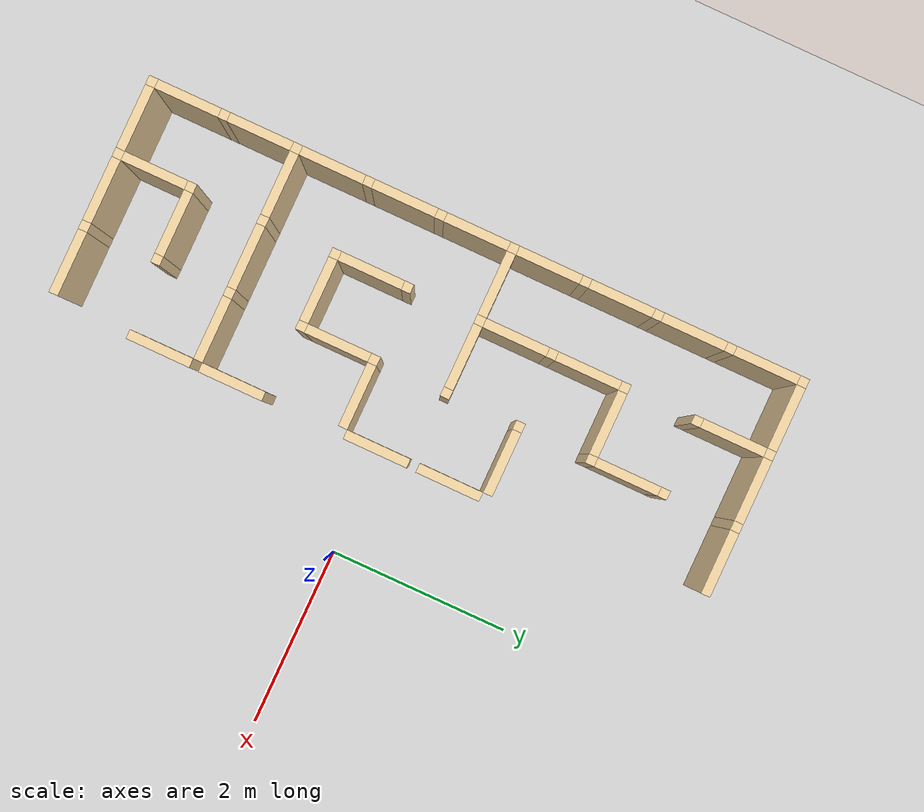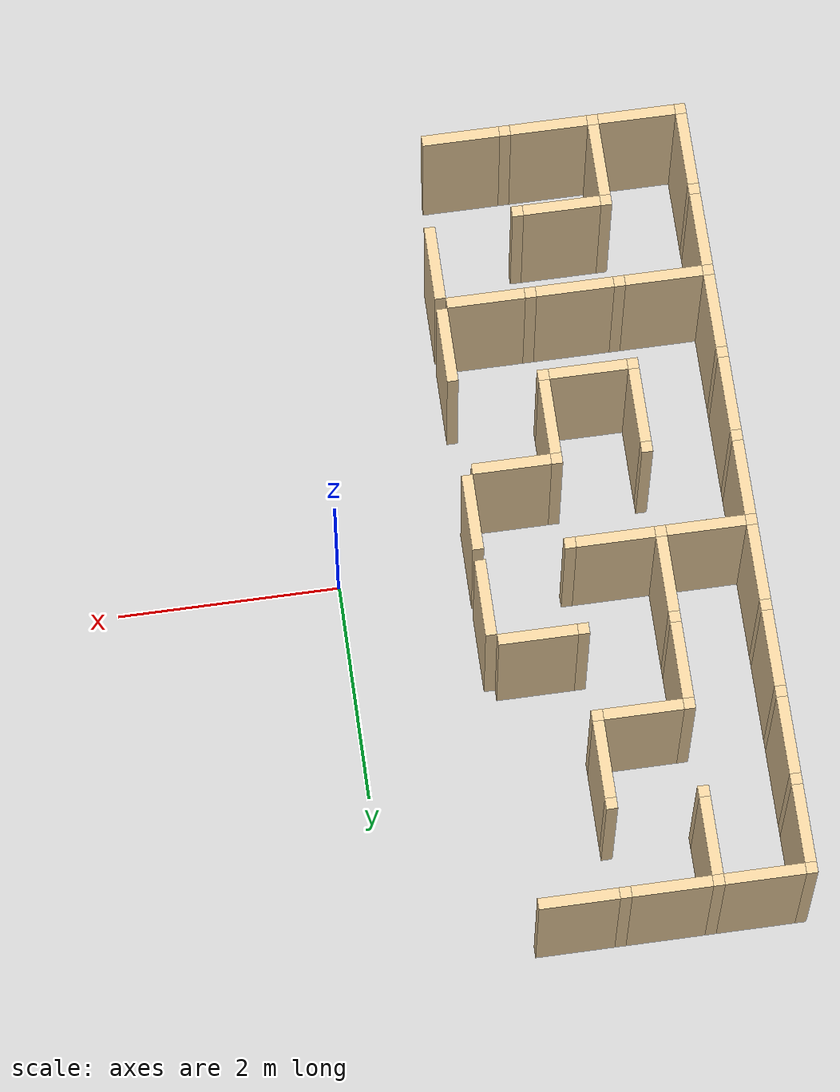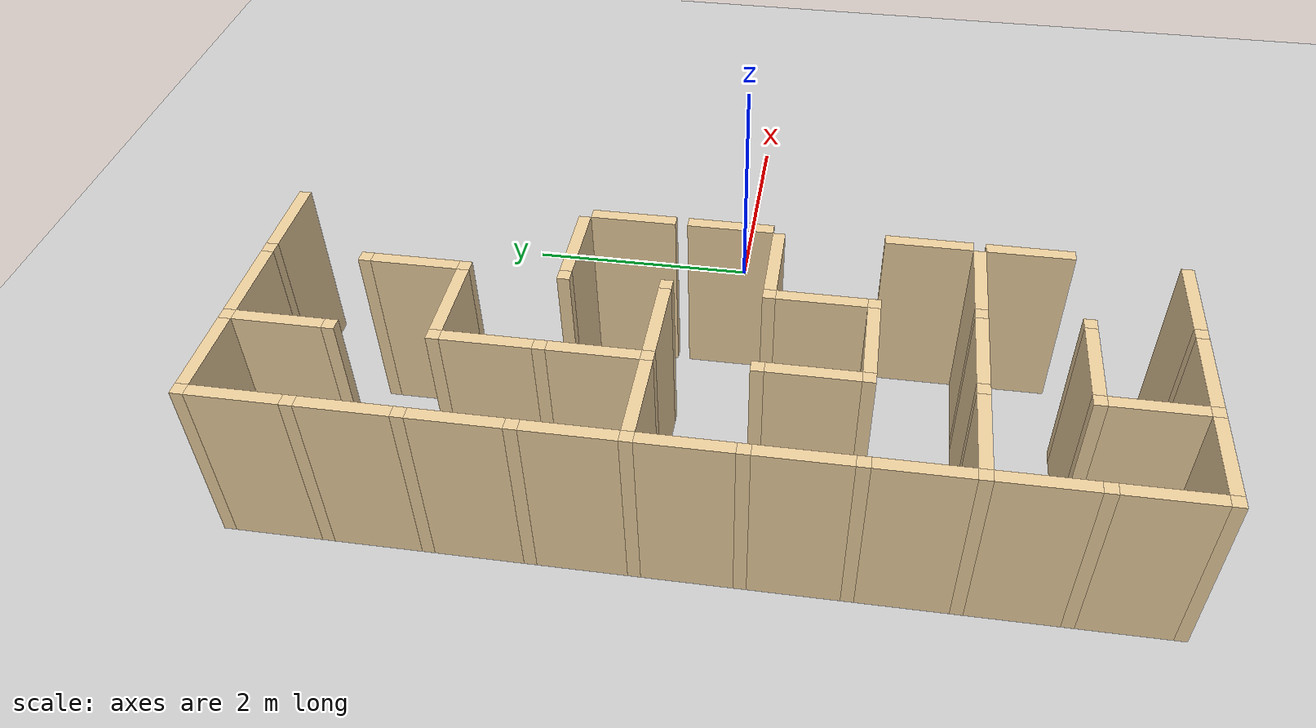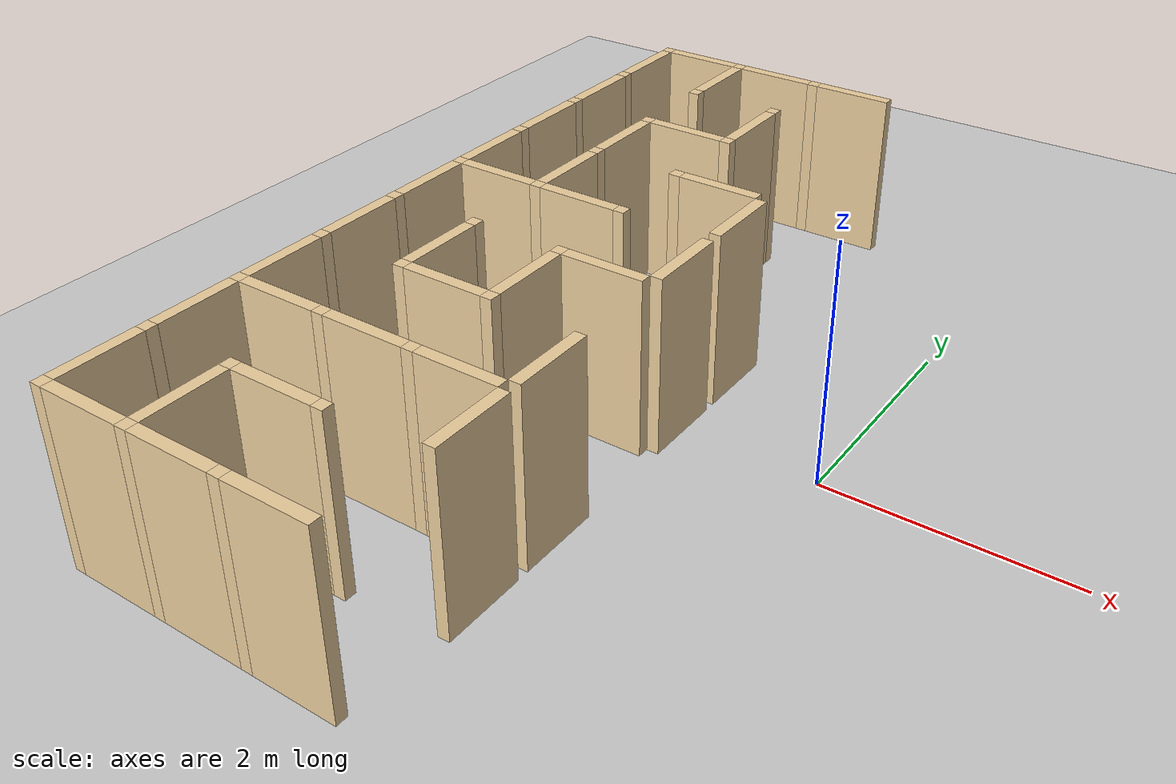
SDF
<sdf version="1.8">
 <world name="maze_world">
  <model name="ground_plane">
   <static>true</static>
   <link name="link">
    <collision name="collision">
     <geometry><plane><normal>0 0 1</normal><size>100 100</size></plane></geometry>
    </collision>
    <visual name="visual">
     <geometry><plane><normal>0 0 1</normal><size>100 100</size></plane></geometry>
     <material><ambient>0.8 0.8 0.8 1</ambient><diffuse>0.8 0.8 0.8 1</diffuse></material>
    </visual>
   </link>
  </model>
  <model name="maze">
   <link name="Wall_0_0_h">
    <collision name="Wall_0_0_h_c">
     <geometry><box><size>0.7 0.1 1.5</size></box></geometry>
     <pose>0 0 0.75 0 0 0</pose>
    </collision>
    <visual name="Wall_0_0_h_v">
     <pose>0 0 0.75 0 0 0</pose>
     <geometry><box><size>0.7 0.1 1.5</size></box></geometry>
     <material>
      <diffuse>0.921569 0.807843 0.615686 1</diffuse>
      <ambient>0.921569 0.807843 0.615686 1</ambient>
     </material>
    </visual>
    <pose>-3.2 -3.6 0 0 0 0</pose>
   </link>
   <link name="Wall_0_0_v">
    <collision name="Wall_0_0_v_c">
     <geometry><box><size>0.7 0.1 1.5</size></box></geometry>
     <pose>0 0 0.75 0 0 0</pose>
    </collision>
    <visual name="Wall_0_0_v_v">
     <pose>0 0 0.75 0 0 0</pose>
     <geometry><box><size>0.7 0.1 1.5</size></box></geometry>
     <material>
      <diffuse>0.921569 0.807843 0.615686 1</diffuse>
      <ambient>0.921569 0.807843 0.615686 1</ambient>
     </material>
    </visual>
    <pose>-3.6 -3.2 0 0 0 1.5708</pose>
   </link>
   <link name="Wall_0_1_h">
    <collision name="Wall_0_1_h_c">
     <geometry><box><size>0.7 0.1 1.5</size></box></geometry>
     <pose>0 0 0.75 0 0 0</pose>
    </collision>
    <visual name="Wall_0_1_h_v">
     <pose>0 0 0.75 0 0 0</pose>
     <geometry><box><size>0.7 0.1 1.5</size></box></geometry>
     <material>
      <diffuse>0.921569 0.807843 0.615686 1</diffuse>
      <ambient>0.921569 0.807843 0.615686 1</ambient>
     </material>
    </visual>
    <pose>-2.4 -3.6 0 0 0 0</pose>
   </link>
   <link name="Wall_0_1_v">
    <collision name="Wall_0_1_v_c">
     <geometry><box><size>0.7 0.1 1.5</size></box></geometry>
     <pose>0 0 0.75 0 0 0</pose>
    </collision>
    <visual name="Wall_0_1_v_v">
     <pose>0 0 0.75 0 0 0</pose>
     <geometry><box><size>0.7 0.1 1.5</size></box></geometry>
     <material>
      <diffuse>0.921569 0.807843 0.615686 1</diffuse>
      <ambient>0.921569 0.807843 0.615686 1</ambient>
     </material>
    </visual>
    <pose>-3.6 -2.4 0 0 0 1.5708</pose>
   </link>
   <link name="Wall_0_2_h">
    <collision name="Wall_0_2_h_c">
     <geometry><box><size>0.7 0.1 1.5</size></box></geometry>
     <pose>0 0 0.75 0 0 0</pose>
    </collision>
    <visual name="Wall_0_2_h_v">
     <pose>0 0 0.75 0 0 0</pose>
     <geometry><box><size>0.7 0.1 1.5</size></box></geometry>
     <material>
      <diffuse>0.921569 0.807843 0.615686 1</diffuse>
      <ambient>0.921569 0.807843 0.615686 1</ambient>
     </material>
    </visual>
    <pose>-1.6 -3.6 0 0 0 0</pose>
   </link>
   <link name="Wall_0_2_v">
    <collision name="Wall_0_2_v_c">
     <geometry><box><size>0.7 0.1 1.5</size></box></geometry>
     <pose>0 0 0.75 0 0 0</pose>
    </collision>
    <visual name="Wall_0_2_v_v">
     <pose>0 0 0.75 0 0 0</pose>
     <geometry><box><size>0.7 0.1 1.5</size></box></geometry>
     <material>
      <diffuse>0.921569 0.807843 0.615686 1</diffuse>
      <ambient>0.921569 0.807843 0.615686 1</ambient>
     </material>
    </visual>
    <pose>-3.6 -1.6 0 0 0 1.5708</pose>
   </link>
   <link name="Wall_0_3_v">
    <collision name="Wall_0_3_v_c">
     <geometry><box><size>0.7 0.1 1.5</size></box></geometry>
     <pose>0 0 0.75 0 0 0</pose>
    </collision>
    <visual name="Wall_0_3_v_v">
     <pose>0 0 0.75 0 0 0</pose>
     <geometry><box><size>0.7 0.1 1.5</size></box></geometry>
     <material>
      <diffuse>0.921569 0.807843 0.615686 1</diffuse>
      <ambient>0.921569 0.807843 0.615686 1</ambient>
     </material>
    </visual>
    <pose>-3.6 -0.8 0 0 0 1.5708</pose>
   </link>
   <link name="Wall_0_4_v">
    <collision name="Wall_0_4_v_c">
     <geometry><box><size>0.7 0.1 1.5</size></box></geometry>
     <pose>0 0 0.75 0 0 0</pose>
    </collision>
    <visual name="Wall_0_4_v_v">
     <pose>0 0 0.75 0 0 0</pose>
     <geometry><box><size>0.7 0.1 1.5</size></box></geometry>
     <material>
      <diffuse>0.921569 0.807843 0.615686 1</diffuse>
      <ambient>0.921569 0.807843 0.615686 1</ambient>
     </material>
    </visual>
    <pose>-3.6 0.0 0 0 0 1.5708</pose>
   </link>
   <link name="Wall_0_5_v">
    <collision name="Wall_0_5_v_c">
     <geometry><box><size>0.7 0.1 1.5</size></box></geometry>
     <pose>0 0 0.75 0 0 0</pose>
    </collision>
    <visual name="Wall_0_5_v_v">
     <pose>0 0 0.75 0 0 0</pose>
     <geometry><box><size>0.7 0.1 1.5</size></box></geometry>
     <material>
      <diffuse>0.921569 0.807843 0.615686 1</diffuse>
      <ambient>0.921569 0.807843 0.615686 1</ambient>
     </material>
    </visual>
    <pose>-3.6 0.8 0 0 0 1.5708</pose>
   </link>
   <link name="Wall_0_6_v">
    <collision name="Wall_0_6_v_c">
     <geometry><box><size>0.7 0.1 1.5</size></box></geometry>
     <pose>0 0 0.75 0 0 0</pose>
    </collision>
    <visual name="Wall_0_6_v_v">
     <pose>0 0 0.75 0 0 0</pose>
     <geometry><box><size>0.7 0.1 1.5</size></box></geometry>
     <material>
      <diffuse>0.921569 0.807843 0.615686 1</diffuse>
      <ambient>0.921569 0.807843 0.615686 1</ambient>
     </material>
    </visual>
    <pose>-3.6 1.6 0 0 0 1.5708</pose>
   </link>
   <link name="Wall_0_7_v">
    <collision name="Wall_0_7_v_c">
     <geometry><box><size>0.7 0.1 1.5</size></box></geometry>
     <pose>0 0 0.75 0 0 0</pose>
    </collision>
    <visual name="Wall_0_7_v_v">
     <pose>0 0 0.75 0 0 0</pose>
     <geometry><box><size>0.7 0.1 1.5</size></box></geometry>
     <material>
      <diffuse>0.921569 0.807843 0.615686 1</diffuse>
      <ambient>0.921569 0.807843 0.615686 1</ambient>
     </material>
    </visual>
    <pose>-3.6 2.4 0 0 0 1.5708</pose>
   </link>
   <link name="Wall_0_8_v">
    <collision name="Wall_0_8_v_c">
     <geometry><box><size>0.7 0.1 1.5</size></box></geometry>
     <pose>0 0 0.75 0 0 0</pose>
    </collision>
    <visual name="Wall_0_8_v_v">
     <pose>0 0 0.75 0 0 0</pose>
     <geometry><box><size>0.7 0.1 1.5</size></box></geometry>
     <material>
      <diffuse>0.921569 0.807843 0.615686 1</diffuse>
      <ambient>0.921569 0.807843 0.615686 1</ambient>
     </material>
    </visual>
    <pose>-3.6 3.2 0 0 0 1.5708</pose>
   </link>
   <link name="Wall_1_0_v">
    <collision name="Wall_1_0_v_c">
     <geometry><box><size>0.7 0.1 1.5</size></box></geometry>
     <pose>0 0 0.75 0 0 0</pose>
    </collision>
    <visual name="Wall_1_0_v_v">
     <pose>0 0 0.75 0 0 0</pose>
     <geometry><box><size>0.7 0.1 1.5</size></box></geometry>
     <material>
      <diffuse>0.921569 0.807843 0.615686 1</diffuse>
      <ambient>0.921569 0.807843 0.615686 1</ambient>
     </material>
    </visual>
    <pose>-2.8 -3.2 0 0 0 1.5708</pose>
   </link>
   <link name="Wall_1_1_h">
    <collision name="Wall_1_1_h_c">
     <geometry><box><size>0.7 0.1 1.5</size></box></geometry>
     <pose>0 0 0.75 0 0 0</pose>
    </collision>
    <visual name="Wall_1_1_h_v">
     <pose>0 0 0.75 0 0 0</pose>
     <geometry><box><size>0.7 0.1 1.5</size></box></geometry>
     <material>
      <diffuse>0.921569 0.807843 0.615686 1</diffuse>
      <ambient>0.921569 0.807843 0.615686 1</ambient>
     </material>
    </visual>
    <pose>-2.4 -2.8 0 0 0 0</pose>
   </link>
   <link name="Wall_1_3_v">
    <collision name="Wall_1_3_v_c">
     <geometry><box><size>0.7 0.1 1.5</size></box></geometry>
     <pose>0 0 0.75 0 0 0</pose>
    </collision>
    <visual name="Wall_1_3_v_v">
     <pose>0 0 0.75 0 0 0</pose>
     <geometry><box><size>0.7 0.1 1.5</size></box></geometry>
     <material>
      <diffuse>0.921569 0.807843 0.615686 1</diffuse>
      <ambient>0.921569 0.807843 0.615686 1</ambient>
     </material>
    </visual>
    <pose>-2.8 -0.8 0 0 0 1.5708</pose>
   </link>
   <link name="Wall_1_5_v">
    <collision name="Wall_1_5_v_c">
     <geometry><box><size>0.7 0.1 1.5</size></box></geometry>
     <pose>0 0 0.75 0 0 0</pose>
    </collision>
    <visual name="Wall_1_5_v_v">
     <pose>0 0 0.75 0 0 0</pose>
     <geometry><box><size>0.7 0.1 1.5</size></box></geometry>
     <material>
      <diffuse>0.921569 0.807843 0.615686 1</diffuse>
      <ambient>0.921569 0.807843 0.615686 1</ambient>
     </material>
    </visual>
    <pose>-2.8 0.8 0 0 0 1.5708</pose>
   </link>
   <link name="Wall_1_6_v">
    <collision name="Wall_1_6_v_c">
     <geometry><box><size>0.7 0.1 1.5</size></box></geometry>
     <pose>0 0 0.75 0 0 0</pose>
    </collision>
    <visual name="Wall_1_6_v_v">
     <pose>0 0 0.75 0 0 0</pose>
     <geometry><box><size>0.7 0.1 1.5</size></box></geometry>
     <material>
      <diffuse>0.921569 0.807843 0.615686 1</diffuse>
      <ambient>0.921569 0.807843 0.615686 1</ambient>
     </material>
    </visual>
    <pose>-2.8 1.6 0 0 0 1.5708</pose>
   </link>
   <link name="Wall_1_8_v">
    <collision name="Wall_1_8_v_c">
     <geometry><box><size>0.7 0.1 1.5</size></box></geometry>
     <pose>0 0 0.75 0 0 0</pose>
    </collision>
    <visual name="Wall_1_8_v_v">
     <pose>0 0 0.75 0 0 0</pose>
     <geometry><box><size>0.7 0.1 1.5</size></box></geometry>
     <material>
      <diffuse>0.921569 0.807843 0.615686 1</diffuse>
      <ambient>0.921569 0.807843 0.615686 1</ambient>
     </material>
    </visual>
    <pose>-2.8 3.2 0 0 0 1.5708</pose>
   </link>
   <link name="Wall_2_0_h">
    <collision name="Wall_2_0_h_c">
     <geometry><box><size>0.7 0.1 1.5</size></box></geometry>
     <pose>0 0 0.75 0 0 0</pose>
    </collision>
    <visual name="Wall_2_0_h_v">
     <pose>0 0 0.75 0 0 0</pose>
     <geometry><box><size>0.7 0.1 1.5</size></box></geometry>
     <material>
      <diffuse>0.921569 0.807843 0.615686 1</diffuse>
      <ambient>0.921569 0.807843 0.615686 1</ambient>
     </material>
    </visual>
    <pose>-3.2 -2.0 0 0 0 0</pose>
   </link>
   <link name="Wall_2_1_h">
    <collision name="Wall_2_1_h_c">
     <geometry><box><size>0.7 0.1 1.5</size></box></geometry>
     <pose>0 0 0.75 0 0 0</pose>
    </collision>
    <visual name="Wall_2_1_h_v">
     <pose>0 0 0.75 0 0 0</pose>
     <geometry><box><size>0.7 0.1 1.5</size></box></geometry>
     <material>
      <diffuse>0.921569 0.807843 0.615686 1</diffuse>
      <ambient>0.921569 0.807843 0.615686 1</ambient>
     </material>
    </visual>
    <pose>-2.4 -2.0 0 0 0 0</pose>
   </link>
   <link name="Wall_2_2_h">
    <collision name="Wall_2_2_h_c">
     <geometry><box><size>0.7 0.1 1.5</size></box></geometry>
     <pose>0 0 0.75 0 0 0</pose>
    </collision>
    <visual name="Wall_2_2_h_v">
     <pose>0 0 0.75 0 0 0</pose>
     <geometry><box><size>0.7 0.1 1.5</size></box></geometry>
     <material>
      <diffuse>0.921569 0.807843 0.615686 1</diffuse>
      <ambient>0.921569 0.807843 0.615686 1</ambient>
     </material>
    </visual>
    <pose>-1.6 -2.0 0 0 0 0</pose>
   </link>
   <link name="Wall_2_3_v">
    <collision name="Wall_2_3_v_c">
     <geometry><box><size>0.7 0.1 1.5</size></box></geometry>
     <pose>0 0 0.75 0 0 0</pose>
    </collision>
    <visual name="Wall_2_3_v_v">
     <pose>0 0 0.75 0 0 0</pose>
     <geometry><box><size>0.7 0.1 1.5</size></box></geometry>
     <material>
      <diffuse>0.921569 0.807843 0.615686 1</diffuse>
      <ambient>0.921569 0.807843 0.615686 1</ambient>
     </material>
    </visual>
    <pose>-2.0 -0.8 0 0 0 1.5708</pose>
   </link>
   <link name="Wall_2_7_v">
    <collision name="Wall_2_7_v_c">
     <geometry><box><size>0.7 0.1 1.5</size></box></geometry>
     <pose>0 0 0.75 0 0 0</pose>
    </collision>
    <visual name="Wall_2_7_v_v">
     <pose>0 0 0.75 0 0 0</pose>
     <geometry><box><size>0.7 0.1 1.5</size></box></geometry>
     <material>
      <diffuse>0.921569 0.807843 0.615686 1</diffuse>
      <ambient>0.921569 0.807843 0.615686 1</ambient>
     </material>
    </visual>
    <pose>-2.0 2.4 0 0 0 1.5708</pose>
   </link>
   <link name="Wall_3_1_h">
    <collision name="Wall_3_1_h_c">
     <geometry><box><size>0.7 0.1 1.5</size></box></geometry>
     <pose>0 0 0.75 0 0 0</pose>
    </collision>
    <visual name="Wall_3_1_h_v">
     <pose>0 0 0.75 0 0 0</pose>
     <geometry><box><size>0.7 0.1 1.5</size></box></geometry>
     <material>
      <diffuse>0.921569 0.807843 0.615686 1</diffuse>
      <ambient>0.921569 0.807843 0.615686 1</ambient>
     </material>
    </visual>
    <pose>-2.4 -1.2 0 0 0 0</pose>
   </link>
   <link name="Wall_3_1_v">
    <collision name="Wall_3_1_v_c">
     <geometry><box><size>0.7 0.1 1.5</size></box></geometry>
     <pose>0 0 0.75 0 0 0</pose>
    </collision>
    <visual name="Wall_3_1_v_v">
     <pose>0 0 0.75 0 0 0</pose>
     <geometry><box><size>0.7 0.1 1.5</size></box></geometry>
     <material>
      <diffuse>0.921569 0.807843 0.615686 1</diffuse>
      <ambient>0.921569 0.807843 0.615686 1</ambient>
     </material>
    </visual>
    <pose>-1.2 -2.4 0 0 0 1.5708</pose>
   </link>
   <link name="Wall_3_2_v">
    <collision name="Wall_3_2_v_c">
     <geometry><box><size>0.7 0.1 1.5</size></box></geometry>
     <pose>0 0 0.75 0 0 0</pose>
    </collision>
    <visual name="Wall_3_2_v_v">
     <pose>0 0 0.75 0 0 0</pose>
     <geometry><box><size>0.7 0.1 1.5</size></box></geometry>
     <material>
      <diffuse>0.921569 0.807843 0.615686 1</diffuse>
      <ambient>0.921569 0.807843 0.615686 1</ambient>
     </material>
    </visual>
    <pose>-1.2 -1.6 0 0 0 1.5708</pose>
   </link>
   <link name="Wall_3_4_v">
    <collision name="Wall_3_4_v_c">
     <geometry><box><size>0.7 0.1 1.5</size></box></geometry>
     <pose>0 0 0.75 0 0 0</pose>
    </collision>
    <visual name="Wall_3_4_v_v">
     <pose>0 0 0.75 0 0 0</pose>
     <geometry><box><size>0.7 0.1 1.5</size></box></geometry>
     <material>
      <diffuse>0.921569 0.807843 0.615686 1</diffuse>
      <ambient>0.921569 0.807843 0.615686 1</ambient>
     </material>
    </visual>
    <pose>-1.2 0.0 0 0 0 1.5708</pose>
   </link>
   <link name="Wall_3_5_v">
    <collision name="Wall_3_5_v_c">
     <geometry><box><size>0.7 0.1 1.5</size></box></geometry>
     <pose>0 0 0.75 0 0 0</pose>
    </collision>
    <visual name="Wall_3_5_v_v">
     <pose>0 0 0.75 0 0 0</pose>
     <geometry><box><size>0.7 0.1 1.5</size></box></geometry>
     <material>
      <diffuse>0.921569 0.807843 0.615686 1</diffuse>
      <ambient>0.921569 0.807843 0.615686 1</ambient>
     </material>
    </visual>
    <pose>-1.2 0.8 0 0 0 1.5708</pose>
   </link>
   <link name="Wall_4_2_h">
    <collision name="Wall_4_2_h_c">
     <geometry><box><size>0.7 0.1 1.5</size></box></geometry>
     <pose>0 0 0.75 0 0 0</pose>
    </collision>
    <visual name="Wall_4_2_h_v">
     <pose>0 0 0.75 0 0 0</pose>
     <geometry><box><size>0.7 0.1 1.5</size></box></geometry>
     <material>
      <diffuse>0.921569 0.807843 0.615686 1</diffuse>
      <ambient>0.921569 0.807843 0.615686 1</ambient>
     </material>
    </visual>
    <pose>-1.6 -0.4 0 0 0 0</pose>
   </link>
   <link name="Wall_5_0_h">
    <collision name="Wall_5_0_h_c">
     <geometry><box><size>0.7 0.1 1.5</size></box></geometry>
     <pose>0 0 0.75 0 0 0</pose>
    </collision>
    <visual name="Wall_5_0_h_v">
     <pose>0 0 0.75 0 0 0</pose>
     <geometry><box><size>0.7 0.1 1.5</size></box></geometry>
     <material>
      <diffuse>0.921569 0.807843 0.615686 1</diffuse>
      <ambient>0.921569 0.807843 0.615686 1</ambient>
     </material>
    </visual>
    <pose>-3.2 0.4 0 0 0 0</pose>
   </link>
   <link name="Wall_5_1_h">
    <collision name="Wall_5_1_h_c">
     <geometry><box><size>0.7 0.1 1.5</size></box></geometry>
     <pose>0 0 0.75 0 0 0</pose>
    </collision>
    <visual name="Wall_5_1_h_v">
     <pose>0 0 0.75 0 0 0</pose>
     <geometry><box><size>0.7 0.1 1.5</size></box></geometry>
     <material>
      <diffuse>0.921569 0.807843 0.615686 1</diffuse>
      <ambient>0.921569 0.807843 0.615686 1</ambient>
     </material>
    </visual>
    <pose>-2.4 0.4 0 0 0 0</pose>
   </link>
   <link name="Wall_6_2_h">
    <collision name="Wall_6_2_h_c">
     <geometry><box><size>0.7 0.1 1.5</size></box></geometry>
     <pose>0 0 0.75 0 0 0</pose>
    </collision>
    <visual name="Wall_6_2_h_v">
     <pose>0 0 0.75 0 0 0</pose>
     <geometry><box><size>0.7 0.1 1.5</size></box></geometry>
     <material>
      <diffuse>0.921569 0.807843 0.615686 1</diffuse>
      <ambient>0.921569 0.807843 0.615686 1</ambient>
     </material>
    </visual>
    <pose>-1.6 1.2 0 0 0 0</pose>
   </link>
   <link name="Wall_7_1_h">
    <collision name="Wall_7_1_h_c">
     <geometry><box><size>0.7 0.1 1.5</size></box></geometry>
     <pose>0 0 0.75 0 0 0</pose>
    </collision>
    <visual name="Wall_7_1_h_v">
     <pose>0 0 0.75 0 0 0</pose>
     <geometry><box><size>0.7 0.1 1.5</size></box></geometry>
     <material>
      <diffuse>0.921569 0.807843 0.615686 1</diffuse>
      <ambient>0.921569 0.807843 0.615686 1</ambient>
     </material>
    </visual>
    <pose>-2.4 2.0 0 0 0 0</pose>
   </link>
   <link name="Wall_9_0_h">
    <collision name="Wall_9_0_h_c">
     <geometry><box><size>0.7 0.1 1.5</size></box></geometry>
     <pose>0 0 0.75 0 0 0</pose>
    </collision>
    <visual name="Wall_9_0_h_v">
     <pose>0 0 0.75 0 0 0</pose>
     <geometry><box><size>0.7 0.1 1.5</size></box></geometry>
     <material>
      <diffuse>0.921569 0.807843 0.615686 1</diffuse>
      <ambient>0.921569 0.807843 0.615686 1</ambient>
     </material>
    </visual>
    <pose>-3.2 3.6 0 0 0 0</pose>
   </link>
   <link name="Wall_9_1_h">
    <collision name="Wall_9_1_h_c">
     <geometry><box><size>0.7 0.1 1.5</size></box></geometry>
     <pose>0 0 0.75 0 0 0</pose>
    </collision>
    <visual name="Wall_9_1_h_v">
     <pose>0 0 0.75 0 0 0</pose>
     <geometry><box><size>0.7 0.1 1.5</size></box></geometry>
     <material>
      <diffuse>0.921569 0.807843 0.615686 1</diffuse>
      <ambient>0.921569 0.807843 0.615686 1</ambient>
     </material>
    </visual>
    <pose>-2.4 3.6 0 0 0 0</pose>
   </link>
   <link name="Wall_9_2_h">
    <collision name="Wall_9_2_h_c">
     <geometry><box><size>0.7 0.1 1.5</size></box></geometry>
     <pose>0 0 0.75 0 0 0</pose>
    </collision>
    <visual name="Wall_9_2_h_v">
     <pose>0 0 0.75 0 0 0</pose>
     <geometry><box><size>0.7 0.1 1.5</size></box></geometry>
     <material>
      <diffuse>0.921569 0.807843 0.615686 1</diffuse>
      <ambient>0.921569 0.807843 0.615686 1</ambient>
     </material>
    </visual>
    <pose>-1.6 3.6 0 0 0 0</pose>
   </link>
   <link name="Joint_0_0">
    <collision name="Joint_0_0_c">
     <geometry><box><size>0.1 0.1 1.5</size></box></geometry>
     <pose>0 0 0.75 0 0 0</pose>
    </collision>
    <visual name="Joint_0_0_v">
     <pose>0 0 0.75 0 0 0</pose>
     <geometry><box><size>0.1 0.1 1.5</size></box></geometry>
     <material>
      <diffuse>0.921569 0.807843 0.615686 1</diffuse>
      <ambient>0.921569 0.807843 0.615686 1</ambient>
     </material>
    </visual>
    <pose>-3.6 -3.6 0 0 0 0</pose>
   </link>
   <link name="Joint_0_1">
    <collision name="Joint_0_1_c">
     <geometry><box><size>0.1 0.1 1.5</size></box></geometry>
     <pose>0 0 0.75 0 0 0</pose>
    </collision>
    <visual name="Joint_0_1_v">
     <pose>0 0 0.75 0 0 0</pose>
     <geometry><box><size>0.1 0.1 1.5</size></box></geometry>
     <material>
      <diffuse>0.921569 0.807843 0.615686 1</diffuse>
      <ambient>0.921569 0.807843 0.615686 1</ambient>
     </material>
    </visual>
    <pose>-3.6 -2.8 0 0 0 0</pose>
   </link>
   <link name="Joint_0_2">
    <collision name="Joint_0_2_c">
     <geometry><box><size>0.1 0.1 1.5</size></box></geometry>
     <pose>0 0 0.75 0 0 0</pose>
    </collision>
    <visual name="Joint_0_2_v">
     <pose>0 0 0.75 0 0 0</pose>
     <geometry><box><size>0.1 0.1 1.5</size></box></geometry>
     <material>
      <diffuse>0.921569 0.807843 0.615686 1</diffuse>
      <ambient>0.921569 0.807843 0.615686 1</ambient>
     </material>
    </visual>
    <pose>-3.6 -2.0 0 0 0 0</pose>
   </link>
   <link name="Joint_0_3">
    <collision name="Joint_0_3_c">
     <geometry><box><size>0.1 0.1 1.5</size></box></geometry>
     <pose>0 0 0.75 0 0 0</pose>
    </collision>
    <visual name="Joint_0_3_v">
     <pose>0 0 0.75 0 0 0</pose>
     <geometry><box><size>0.1 0.1 1.5</size></box></geometry>
     <material>
      <diffuse>0.921569 0.807843 0.615686 1</diffuse>
      <ambient>0.921569 0.807843 0.615686 1</ambient>
     </material>
    </visual>
    <pose>-3.6 -1.2 0 0 0 0</pose>
   </link>
   <link name="Joint_0_4">
    <collision name="Joint_0_4_c">
     <geometry><box><size>0.1 0.1 1.5</size></box></geometry>
     <pose>0 0 0.75 0 0 0</pose>
    </collision>
    <visual name="Joint_0_4_v">
     <pose>0 0 0.75 0 0 0</pose>
     <geometry><box><size>0.1 0.1 1.5</size></box></geometry>
     <material>
      <diffuse>0.921569 0.807843 0.615686 1</diffuse>
      <ambient>0.921569 0.807843 0.615686 1</ambient>
     </material>
    </visual>
    <pose>-3.6 -0.4 0 0 0 0</pose>
   </link>
   <link name="Joint_0_5">
    <collision name="Joint_0_5_c">
     <geometry><box><size>0.1 0.1 1.5</size></box></geometry>
     <pose>0 0 0.75 0 0 0</pose>
    </collision>
    <visual name="Joint_0_5_v">
     <pose>0 0 0.75 0 0 0</pose>
     <geometry><box><size>0.1 0.1 1.5</size></box></geometry>
     <material>
      <diffuse>0.921569 0.807843 0.615686 1</diffuse>
      <ambient>0.921569 0.807843 0.615686 1</ambient>
     </material>
    </visual>
    <pose>-3.6 0.4 0 0 0 0</pose>
   </link>
   <link name="Joint_0_6">
    <collision name="Joint_0_6_c">
     <geometry><box><size>0.1 0.1 1.5</size></box></geometry>
     <pose>0 0 0.75 0 0 0</pose>
    </collision>
    <visual name="Joint_0_6_v">
     <pose>0 0 0.75 0 0 0</pose>
     <geometry><box><size>0.1 0.1 1.5</size></box></geometry>
     <material>
      <diffuse>0.921569 0.807843 0.615686 1</diffuse>
      <ambient>0.921569 0.807843 0.615686 1</ambient>
     </material>
    </visual>
    <pose>-3.6 1.2 0 0 0 0</pose>
   </link>
   <link name="Joint_0_7">
    <collision name="Joint_0_7_c">
     <geometry><box><size>0.1 0.1 1.5</size></box></geometry>
     <pose>0 0 0.75 0 0 0</pose>
    </collision>
    <visual name="Joint_0_7_v">
     <pose>0 0 0.75 0 0 0</pose>
     <geometry><box><size>0.1 0.1 1.5</size></box></geometry>
     <material>
      <diffuse>0.921569 0.807843 0.615686 1</diffuse>
      <ambient>0.921569 0.807843 0.615686 1</ambient>
     </material>
    </visual>
    <pose>-3.6 2.0 0 0 0 0</pose>
   </link>
   <link name="Joint_0_8">
    <collision name="Joint_0_8_c">
     <geometry><box><size>0.1 0.1 1.5</size></box></geometry>
     <pose>0 0 0.75 0 0 0</pose>
    </collision>
    <visual name="Joint_0_8_v">
     <pose>0 0 0.75 0 0 0</pose>
     <geometry><box><size>0.1 0.1 1.5</size></box></geometry>
     <material>
      <diffuse>0.921569 0.807843 0.615686 1</diffuse>
      <ambient>0.921569 0.807843 0.615686 1</ambient>
     </material>
    </visual>
    <pose>-3.6 2.8 0 0 0 0</pose>
   </link>
   <link name="Joint_0_9">
    <collision name="Joint_0_9_c">
     <geometry><box><size>0.1 0.1 1.5</size></box></geometry>
     <pose>0 0 0.75 0 0 0</pose>
    </collision>
    <visual name="Joint_0_9_v">
     <pose>0 0 0.75 0 0 0</pose>
     <geometry><box><size>0.1 0.1 1.5</size></box></geometry>
     <material>
      <diffuse>0.921569 0.807843 0.615686 1</diffuse>
      <ambient>0.921569 0.807843 0.615686 1</ambient>
     </material>
    </visual>
    <pose>-3.6 3.6 0 0 0 0</pose>
   </link>
   <link name="Joint_1_0">
    <collision name="Joint_1_0_c">
     <geometry><box><size>0.1 0.1 1.5</size></box></geometry>
     <pose>0 0 0.75 0 0 0</pose>
    </collision>
    <visual name="Joint_1_0_v">
     <pose>0 0 0.75 0 0 0</pose>
     <geometry><box><size>0.1 0.1 1.5</size></box></geometry>
     <material>
      <diffuse>0.921569 0.807843 0.615686 1</diffuse>
      <ambient>0.921569 0.807843 0.615686 1</ambient>
     </material>
    </visual>
    <pose>-2.8 -3.6 0 0 0 0</pose>
   </link>
   <link name="Joint_1_1">
    <collision name="Joint_1_1_c">
     <geometry><box><size>0.1 0.1 1.5</size></box></geometry>
     <pose>0 0 0.75 0 0 0</pose>
    </collision>
    <visual name="Joint_1_1_v">
     <pose>0 0 0.75 0 0 0</pose>
     <geometry><box><size>0.1 0.1 1.5</size></box></geometry>
     <material>
      <diffuse>0.921569 0.807843 0.615686 1</diffuse>
      <ambient>0.921569 0.807843 0.615686 1</ambient>
     </material>
    </visual>
    <pose>-2.8 -2.8 0 0 0 0</pose>
   </link>
   <link name="Joint_1_2">
    <collision name="Joint_1_2_c">
     <geometry><box><size>0.1 0.1 1.5</size></box></geometry>
     <pose>0 0 0.75 0 0 0</pose>
    </collision>
    <visual name="Joint_1_2_v">
     <pose>0 0 0.75 0 0 0</pose>
     <geometry><box><size>0.1 0.1 1.5</size></box></geometry>
     <material>
      <diffuse>0.921569 0.807843 0.615686 1</diffuse>
      <ambient>0.921569 0.807843 0.615686 1</ambient>
     </material>
    </visual>
    <pose>-2.8 -2.0 0 0 0 0</pose>
   </link>
   <link name="Joint_1_3">
    <collision name="Joint_1_3_c">
     <geometry><box><size>0.1 0.1 1.5</size></box></geometry>
     <pose>0 0 0.75 0 0 0</pose>
    </collision>
    <visual name="Joint_1_3_v">
     <pose>0 0 0.75 0 0 0</pose>
     <geometry><box><size>0.1 0.1 1.5</size></box></geometry>
     <material>
      <diffuse>0.921569 0.807843 0.615686 1</diffuse>
      <ambient>0.921569 0.807843 0.615686 1</ambient>
     </material>
    </visual>
    <pose>-2.8 -1.2 0 0 0 0</pose>
   </link>
   <link name="Joint_1_4">
    <collision name="Joint_1_4_c">
     <geometry><box><size>0.1 0.1 1.5</size></box></geometry>
     <pose>0 0 0.75 0 0 0</pose>
    </collision>
    <visual name="Joint_1_4_v">
     <pose>0 0 0.75 0 0 0</pose>
     <geometry><box><size>0.1 0.1 1.5</size></box></geometry>
     <material>
      <diffuse>0.921569 0.807843 0.615686 1</diffuse>
      <ambient>0.921569 0.807843 0.615686 1</ambient>
     </material>
    </visual>
    <pose>-2.8 -0.4 0 0 0 0</pose>
   </link>
   <link name="Joint_1_5">
    <collision name="Joint_1_5_c">
     <geometry><box><size>0.1 0.1 1.5</size></box></geometry>
     <pose>0 0 0.75 0 0 0</pose>
    </collision>
    <visual name="Joint_1_5_v">
     <pose>0 0 0.75 0 0 0</pose>
     <geometry><box><size>0.1 0.1 1.5</size></box></geometry>
     <material>
      <diffuse>0.921569 0.807843 0.615686 1</diffuse>
      <ambient>0.921569 0.807843 0.615686 1</ambient>
     </material>
    </visual>
    <pose>-2.8 0.4 0 0 0 0</pose>
   </link>
   <link name="Joint_1_6">
    <collision name="Joint_1_6_c">
     <geometry><box><size>0.1 0.1 1.5</size></box></geometry>
     <pose>0 0 0.75 0 0 0</pose>
    </collision>
    <visual name="Joint_1_6_v">
     <pose>0 0 0.75 0 0 0</pose>
     <geometry><box><size>0.1 0.1 1.5</size></box></geometry>
     <material>
      <diffuse>0.921569 0.807843 0.615686 1</diffuse>
      <ambient>0.921569 0.807843 0.615686 1</ambient>
     </material>
    </visual>
    <pose>-2.8 1.2 0 0 0 0</pose>
   </link>
   <link name="Joint_1_7">
    <collision name="Joint_1_7_c">
     <geometry><box><size>0.1 0.1 1.5</size></box></geometry>
     <pose>0 0 0.75 0 0 0</pose>
    </collision>
    <visual name="Joint_1_7_v">
     <pose>0 0 0.75 0 0 0</pose>
     <geometry><box><size>0.1 0.1 1.5</size></box></geometry>
     <material>
      <diffuse>0.921569 0.807843 0.615686 1</diffuse>
      <ambient>0.921569 0.807843 0.615686 1</ambient>
     </material>
    </visual>
    <pose>-2.8 2.0 0 0 0 0</pose>
   </link>
   <link name="Joint_1_8">
    <collision name="Joint_1_8_c">
     <geometry><box><size>0.1 0.1 1.5</size></box></geometry>
     <pose>0 0 0.75 0 0 0</pose>
    </collision>
    <visual name="Joint_1_8_v">
     <pose>0 0 0.75 0 0 0</pose>
     <geometry><box><size>0.1 0.1 1.5</size></box></geometry>
     <material>
      <diffuse>0.921569 0.807843 0.615686 1</diffuse>
      <ambient>0.921569 0.807843 0.615686 1</ambient>
     </material>
    </visual>
    <pose>-2.8 2.8 0 0 0 0</pose>
   </link>
   <link name="Joint_1_9">
    <collision name="Joint_1_9_c">
     <geometry><box><size>0.1 0.1 1.5</size></box></geometry>
     <pose>0 0 0.75 0 0 0</pose>
    </collision>
    <visual name="Joint_1_9_v">
     <pose>0 0 0.75 0 0 0</pose>
     <geometry><box><size>0.1 0.1 1.5</size></box></geometry>
     <material>
      <diffuse>0.921569 0.807843 0.615686 1</diffuse>
      <ambient>0.921569 0.807843 0.615686 1</ambient>
     </material>
    </visual>
    <pose>-2.8 3.6 0 0 0 0</pose>
   </link>
   <link name="Joint_2_0">
    <collision name="Joint_2_0_c">
     <geometry><box><size>0.1 0.1 1.5</size></box></geometry>
     <pose>0 0 0.75 0 0 0</pose>
    </collision>
    <visual name="Joint_2_0_v">
     <pose>0 0 0.75 0 0 0</pose>
     <geometry><box><size>0.1 0.1 1.5</size></box></geometry>
     <material>
      <diffuse>0.921569 0.807843 0.615686 1</diffuse>
      <ambient>0.921569 0.807843 0.615686 1</ambient>
     </material>
    </visual>
    <pose>-2.0 -3.6 0 0 0 0</pose>
   </link>
   <link name="Joint_2_1">
    <collision name="Joint_2_1_c">
     <geometry><box><size>0.1 0.1 1.5</size></box></geometry>
     <pose>0 0 0.75 0 0 0</pose>
    </collision>
    <visual name="Joint_2_1_v">
     <pose>0 0 0.75 0 0 0</pose>
     <geometry><box><size>0.1 0.1 1.5</size></box></geometry>
     <material>
      <diffuse>0.921569 0.807843 0.615686 1</diffuse>
      <ambient>0.921569 0.807843 0.615686 1</ambient>
     </material>
    </visual>
    <pose>-2.0 -2.8 0 0 0 0</pose>
   </link>
   <link name="Joint_2_2">
    <collision name="Joint_2_2_c">
     <geometry><box><size>0.1 0.1 1.5</size></box></geometry>
     <pose>0 0 0.75 0 0 0</pose>
    </collision>
    <visual name="Joint_2_2_v">
     <pose>0 0 0.75 0 0 0</pose>
     <geometry><box><size>0.1 0.1 1.5</size></box></geometry>
     <material>
      <diffuse>0.921569 0.807843 0.615686 1</diffuse>
      <ambient>0.921569 0.807843 0.615686 1</ambient>
     </material>
    </visual>
    <pose>-2.0 -2.0 0 0 0 0</pose>
   </link>
   <link name="Joint_2_3">
    <collision name="Joint_2_3_c">
     <geometry><box><size>0.1 0.1 1.5</size></box></geometry>
     <pose>0 0 0.75 0 0 0</pose>
    </collision>
    <visual name="Joint_2_3_v">
     <pose>0 0 0.75 0 0 0</pose>
     <geometry><box><size>0.1 0.1 1.5</size></box></geometry>
     <material>
      <diffuse>0.921569 0.807843 0.615686 1</diffuse>
      <ambient>0.921569 0.807843 0.615686 1</ambient>
     </material>
    </visual>
    <pose>-2.0 -1.2 0 0 0 0</pose>
   </link>
   <link name="Joint_2_4">
    <collision name="Joint_2_4_c">
     <geometry><box><size>0.1 0.1 1.5</size></box></geometry>
     <pose>0 0 0.75 0 0 0</pose>
    </collision>
    <visual name="Joint_2_4_v">
     <pose>0 0 0.75 0 0 0</pose>
     <geometry><box><size>0.1 0.1 1.5</size></box></geometry>
     <material>
      <diffuse>0.921569 0.807843 0.615686 1</diffuse>
      <ambient>0.921569 0.807843 0.615686 1</ambient>
     </material>
    </visual>
    <pose>-2.0 -0.4 0 0 0 0</pose>
   </link>
   <link name="Joint_2_5">
    <collision name="Joint_2_5_c">
     <geometry><box><size>0.1 0.1 1.5</size></box></geometry>
     <pose>0 0 0.75 0 0 0</pose>
    </collision>
    <visual name="Joint_2_5_v">
     <pose>0 0 0.75 0 0 0</pose>
     <geometry><box><size>0.1 0.1 1.5</size></box></geometry>
     <material>
      <diffuse>0.921569 0.807843 0.615686 1</diffuse>
      <ambient>0.921569 0.807843 0.615686 1</ambient>
     </material>
    </visual>
    <pose>-2.0 0.4 0 0 0 0</pose>
   </link>
   <link name="Joint_2_6">
    <collision name="Joint_2_6_c">
     <geometry><box><size>0.1 0.1 1.5</size></box></geometry>
     <pose>0 0 0.75 0 0 0</pose>
    </collision>
    <visual name="Joint_2_6_v">
     <pose>0 0 0.75 0 0 0</pose>
     <geometry><box><size>0.1 0.1 1.5</size></box></geometry>
     <material>
      <diffuse>0.921569 0.807843 0.615686 1</diffuse>
      <ambient>0.921569 0.807843 0.615686 1</ambient>
     </material>
    </visual>
    <pose>-2.0 1.2 0 0 0 0</pose>
   </link>
   <link name="Joint_2_7">
    <collision name="Joint_2_7_c">
     <geometry><box><size>0.1 0.1 1.5</size></box></geometry>
     <pose>0 0 0.75 0 0 0</pose>
    </collision>
    <visual name="Joint_2_7_v">
     <pose>0 0 0.75 0 0 0</pose>
     <geometry><box><size>0.1 0.1 1.5</size></box></geometry>
     <material>
      <diffuse>0.921569 0.807843 0.615686 1</diffuse>
      <ambient>0.921569 0.807843 0.615686 1</ambient>
     </material>
    </visual>
    <pose>-2.0 2.0 0 0 0 0</pose>
   </link>
   <link name="Joint_2_8">
    <collision name="Joint_2_8_c">
     <geometry><box><size>0.1 0.1 1.5</size></box></geometry>
     <pose>0 0 0.75 0 0 0</pose>
    </collision>
    <visual name="Joint_2_8_v">
     <pose>0 0 0.75 0 0 0</pose>
     <geometry><box><size>0.1 0.1 1.5</size></box></geometry>
     <material>
      <diffuse>0.921569 0.807843 0.615686 1</diffuse>
      <ambient>0.921569 0.807843 0.615686 1</ambient>
     </material>
    </visual>
    <pose>-2.0 2.8 0 0 0 0</pose>
   </link>
   <link name="Joint_2_9">
    <collision name="Joint_2_9_c">
     <geometry><box><size>0.1 0.1 1.5</size></box></geometry>
     <pose>0 0 0.75 0 0 0</pose>
    </collision>
    <visual name="Joint_2_9_v">
     <pose>0 0 0.75 0 0 0</pose>
     <geometry><box><size>0.1 0.1 1.5</size></box></geometry>
     <material>
      <diffuse>0.921569 0.807843 0.615686 1</diffuse>
      <ambient>0.921569 0.807843 0.615686 1</ambient>
     </material>
    </visual>
    <pose>-2.0 3.6 0 0 0 0</pose>
   </link>
   <static>1</static>
  </model>
 </world>
</sdf>
